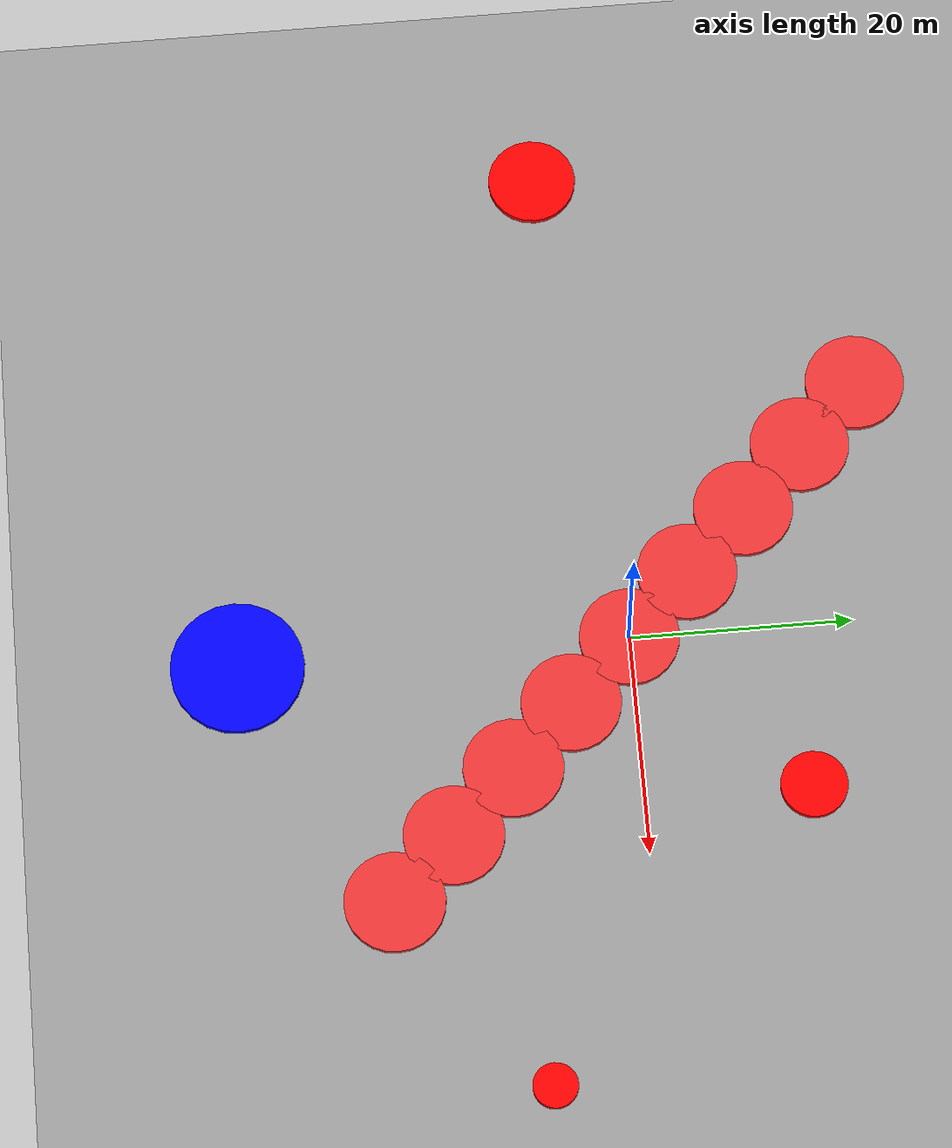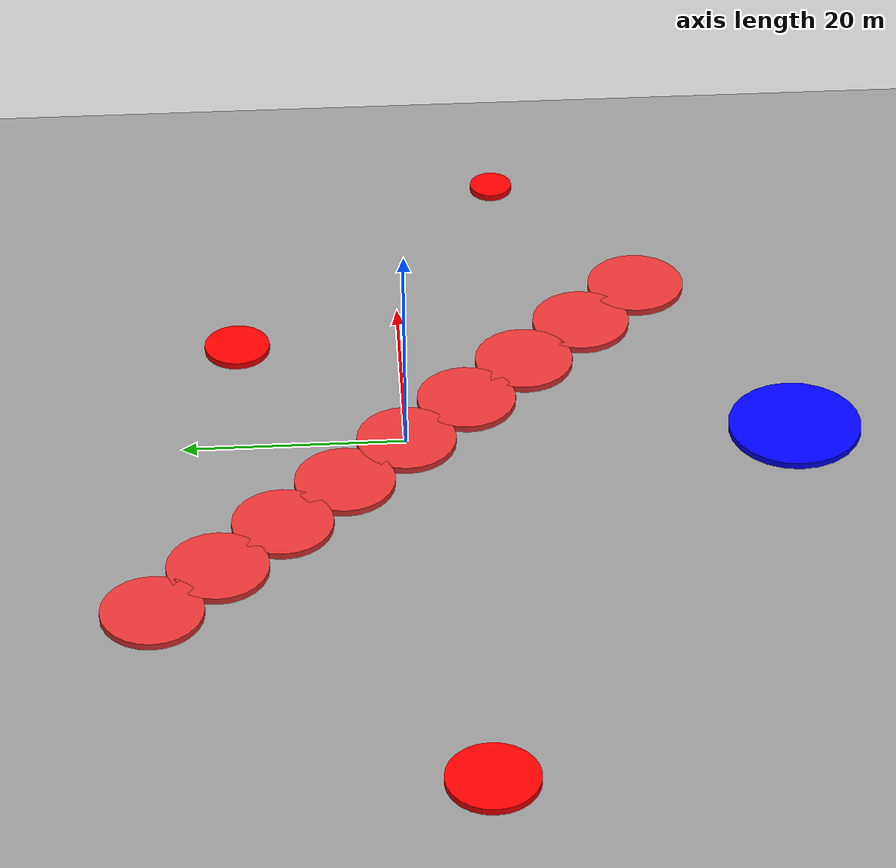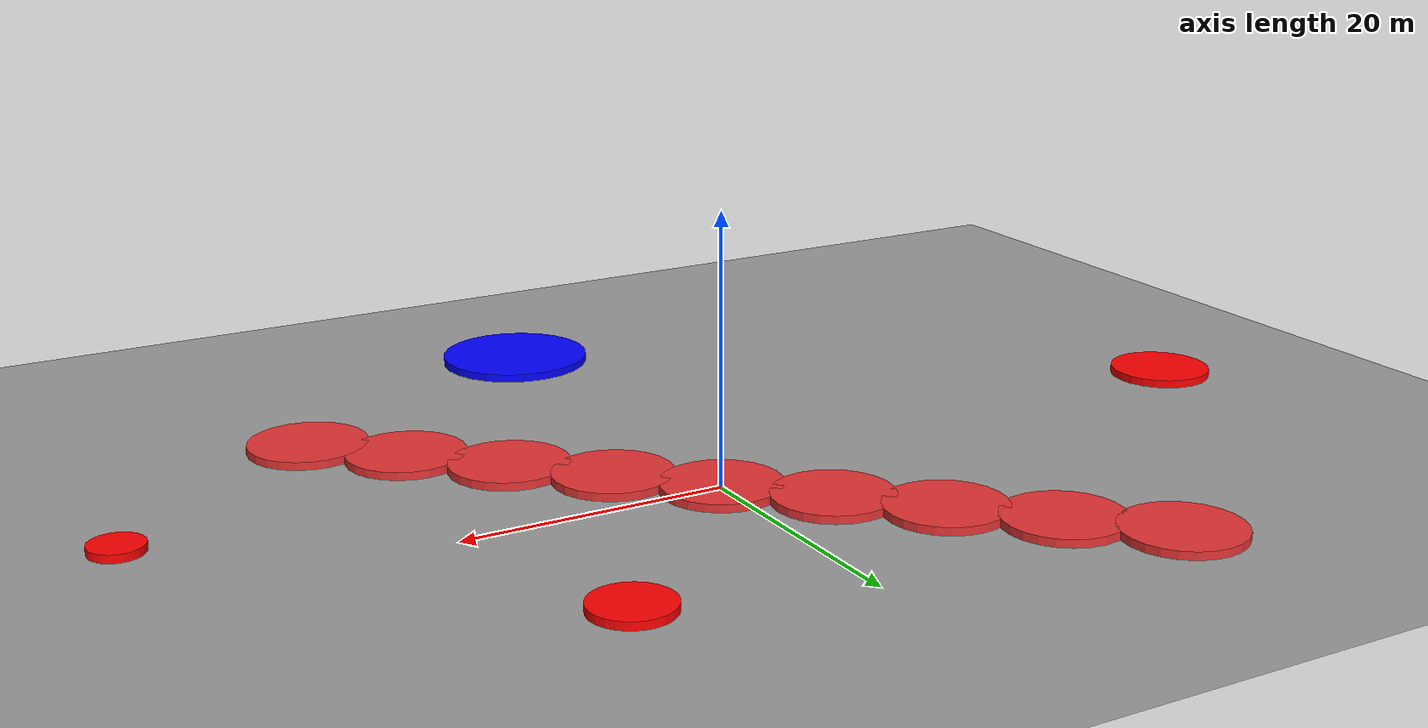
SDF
<sdf version="1.9">
 <world name="default">
  <model name="ground_plane">
   <static>true</static>
   <link name="link">
    <collision name="collision">
     <geometry><plane><normal>0 0 1</normal><size>100 100</size></plane></geometry>
     <surface><contact><collide_without_contact_bitmask>0x01</collide_without_contact_bitmask></contact></surface>
    </collision>
    <visual name="visual">
     <geometry><plane><normal>0 0 1</normal><size>100 100</size></plane></geometry>
     <material><ambient>0.6 0.6 0.6 1</ambient><diffuse>0.6 0.6 0.6 1</diffuse></material>
    </visual>
   </link>
  </model>
  <model name="moving_cylinder_20">
   <pose>22.6 -22.6 0 0 0 0</pose>
   <link name="moving_link">
    <gravity>false</gravity>
    <visual name="visual">
     <geometry><cylinder><radius>4.5</radius><length>1.0</length></cylinder></geometry>
     <material><ambient>0.9 0.2 0.2 1</ambient></material>
    </visual>
   </link>
   <motion>
    <link_name>moving_link</link_name>
    <direction>0.707 0.707 0</direction>
    <amplitude>25.0</amplitude>
    <speed>20.0</speed>
    <turnaround_threshold>0.5</turnaround_threshold>
   </motion>
  </model>
  <model name="moving_cylinder_21">
   <pose>17.0 -17.0 0 0 0 0</pose>
   <link name="moving_link">
    <gravity>false</gravity>
    <visual name="visual">
     <geometry><cylinder><radius>4.5</radius><length>1.0</length></cylinder></geometry>
     <material><ambient>0.9 0.2 0.2 1</ambient></material>
    </visual>
   </link>
   <motion>
    <link_name>moving_link</link_name>
    <direction>0.707 0.707 0</direction>
    <amplitude>25.0</amplitude>
    <speed>20.0</speed>
    <turnaround_threshold>0.5</turnaround_threshold>
   </motion>
  </model>
  <model name="moving_cylinder_22">
   <pose>11.3 -11.3 0 0 0 0</pose>
   <link name="moving_link">
    <gravity>false</gravity>
    <visual name="visual">
     <geometry><cylinder><radius>4.5</radius><length>1.0</length></cylinder></geometry>
     <material><ambient>0.9 0.2 0.2 1</ambient></material>
    </visual>
   </link>
   <motion>
    <link_name>moving_link</link_name>
    <direction>0.707 0.707 0</direction>
    <amplitude>25.0</amplitude>
    <speed>20.0</speed>
    <turnaround_threshold>0.5</turnaround_threshold>
   </motion>
  </model>
  <model name="moving_cylinder_23">
   <pose>5.7 -5.7 0 0 0 0</pose>
   <link name="moving_link">
    <gravity>false</gravity>
    <visual name="visual">
     <geometry><cylinder><radius>4.5</radius><length>1.0</length></cylinder></geometry>
     <material><ambient>0.9 0.2 0.2 1</ambient></material>
    </visual>
   </link>
   <motion>
    <link_name>moving_link</link_name>
    <direction>0.707 0.707 0</direction>
    <amplitude>25.0</amplitude>
    <speed>20.0</speed>
    <turnaround_threshold>0.5</turnaround_threshold>
   </motion>
  </model>
  <model name="moving_cylinder_24">
   <link name="moving_link">
    <gravity>false</gravity>
    <visual name="visual">
     <geometry><cylinder><radius>4.5</radius><length>1.0</length></cylinder></geometry>
     <material><ambient>0.9 0.2 0.2 1</ambient></material>
    </visual>
   </link>
   <motion>
    <link_name>moving_link</link_name>
    <direction>0.707 0.707 0</direction>
    <amplitude>25.0</amplitude>
    <speed>20.0</speed>
    <turnaround_threshold>0.5</turnaround_threshold>
   </motion>
  </model>
  <model name="moving_cylinder_25">
   <pose>-5.7 5.7 0 0 0 0</pose>
   <link name="moving_link">
    <gravity>false</gravity>
    <visual name="visual">
     <geometry><cylinder><radius>4.5</radius><length>1.0</length></cylinder></geometry>
     <material><ambient>0.9 0.2 0.2 1</ambient></material>
    </visual>
   </link>
   <motion>
    <link_name>moving_link</link_name>
    <direction>0.707 0.707 0</direction>
    <amplitude>25.0</amplitude>
    <speed>20.0</speed>
    <turnaround_threshold>0.5</turnaround_threshold>
   </motion>
  </model>
  <model name="moving_cylinder_26">
   <pose>-11.3 11.3 0 0 0 0</pose>
   <link name="moving_link">
    <gravity>false</gravity>
    <visual name="visual">
     <geometry><cylinder><radius>4.5</radius><length>1.0</length></cylinder></geometry>
     <material><ambient>0.9 0.2 0.2 1</ambient></material>
    </visual>
   </link>
   <motion>
    <link_name>moving_link</link_name>
    <direction>0.707 0.707 0</direction>
    <amplitude>25.0</amplitude>
    <speed>20.0</speed>
    <turnaround_threshold>0.5</turnaround_threshold>
   </motion>
  </model>
  <model name="moving_cylinder_27">
   <pose>-17.0 17.0 0 0 0 0</pose>
   <link name="moving_link">
    <gravity>false</gravity>
    <visual name="visual">
     <geometry><cylinder><radius>4.5</radius><length>1.0</length></cylinder></geometry>
     <material><ambient>0.9 0.2 0.2 1</ambient></material>
    </visual>
   </link>
   <motion>
    <link_name>moving_link</link_name>
    <direction>0.707 0.707 0</direction>
    <amplitude>25.0</amplitude>
    <speed>20.0</speed>
    <turnaround_threshold>0.5</turnaround_threshold>
   </motion>
  </model>
  <model name="moving_cylinder_28">
   <pose>-22.6 22.6 0 0 0 0</pose>
   <link name="moving_link">
    <gravity>false</gravity>
    <visual name="visual">
     <geometry><cylinder><radius>4.5</radius><length>1.0</length></cylinder></geometry>
     <material><ambient>0.9 0.2 0.2 1</ambient></material>
    </visual>
   </link>
   <motion>
    <link_name>moving_link</link_name>
    <direction>0.707 0.707 0</direction>
    <amplitude>25.0</amplitude>
    <speed>20.0</speed>
    <turnaround_threshold>0.5</turnaround_threshold>
   </motion>
  </model>
  <model name="moving_cylinder_2">
   <pose>0.0 -35.0 0 0 0 0</pose>
   <link name="moving_link">
    <gravity>false</gravity>
    <kinematic>true</kinematic>
    <visual name="visual">
     <geometry><cylinder><radius>6.0</radius><length>1.0</length></cylinder></geometry>
     <material><ambient>0 0 1 1</ambient></material>
    </visual>
   </link>
   <motion>
    <link_name>moving_link</link_name>
    <direction>0 1 0</direction>
    <amplitude>40.0</amplitude>
    <speed>8.0</speed>
   </motion>
  </model>
  <model name="moving_cylinder_16">
   <pose>40.0 -10.0 0 0 0 0</pose>
   <link name="moving_link">
    <gravity>false</gravity>
    <visual name="visual">
     <geometry><cylinder><radius>2.0</radius><length>1.0</length></cylinder></geometry>
     <material><ambient>1 0 0 1</ambient></material>
    </visual>
   </link>
   <motion>
    <link_name>moving_link</link_name>
    <direction>-1 0 0</direction>
    <amplitude>40.0</amplitude>
    <speed>8.0</speed>
    <turnaround_threshold>0.5</turnaround_threshold>
   </motion>
  </model>
  <model name="moving_cylinder_18">
   <pose>15.0 15.0 0 0 0 0</pose>
   <link name="moving_link">
    <gravity>false</gravity>
    <visual name="visual">
     <geometry><cylinder><radius>3.0</radius><length>1.0</length></cylinder></geometry>
     <material><ambient>1 0 0 1</ambient></material>
    </visual>
   </link>
   <motion>
    <link_name>moving_link</link_name>
    <direction>0.707 0.707 0</direction>
    <amplitude>40.0</amplitude>
    <speed>8.0</speed>
    <turnaround_threshold>0.5</turnaround_threshold>
   </motion>
  </model>
  <model name="moving_cylinder_19">
   <pose>-45.0 -5.0 0 0 0 0</pose>
   <link name="moving_link">
    <gravity>false</gravity>
    <visual name="visual">
     <geometry><cylinder><radius>4.0</radius><length>1.0</length></cylinder></geometry>
     <material><ambient>1 0 0 1</ambient></material>
    </visual>
   </link>
   <motion>
    <link_name>moving_link</link_name>
    <direction>1 0 0</direction>
    <amplitude>40.0</amplitude>
    <speed>8.0</speed>
    <turnaround_threshold>0.5</turnaround_threshold>
   </motion>
  </model>
 </world>
</sdf>
